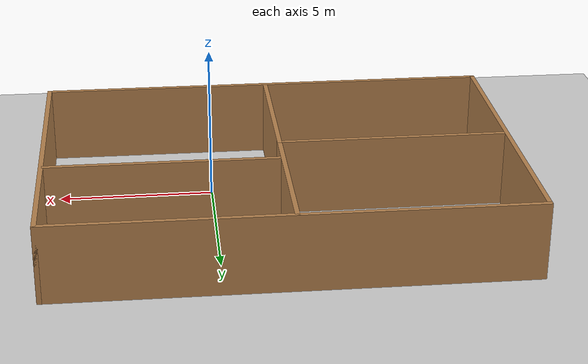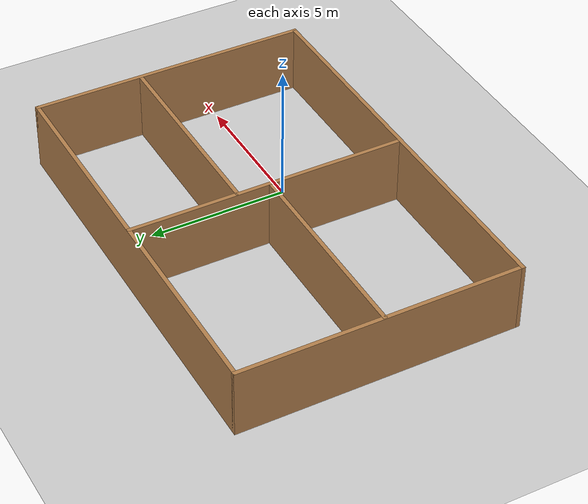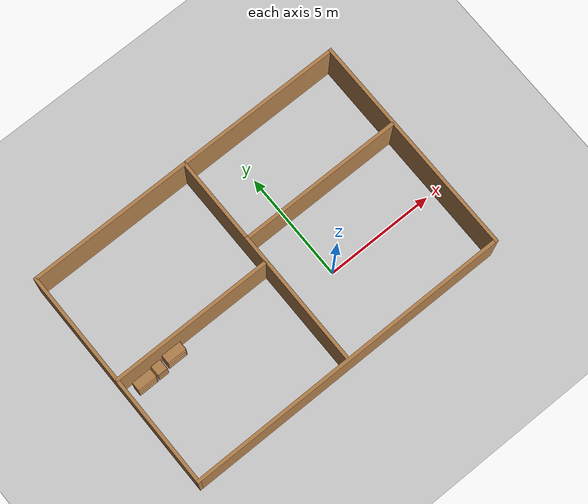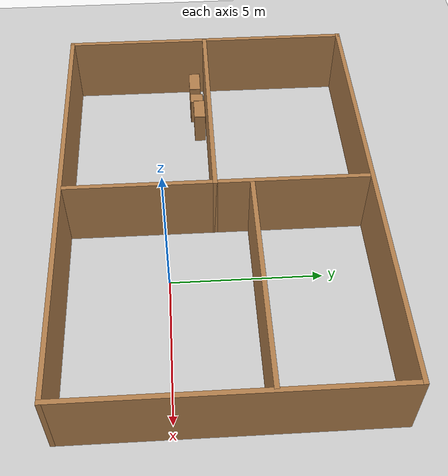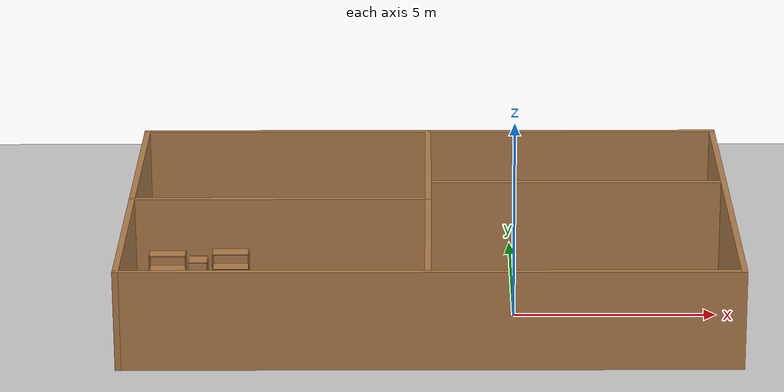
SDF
<sdf version="1.6">
 <world name="default">
  <light name="sun" type="directional">
   <pose>0 0 10 0 -0 0</pose>
   <diffuse>0.8 0.8 0.8 1</diffuse>
   <specular>0.2 0.2 0.2 1</specular>
   <attenuation>
    <range>1000</range>
    <constant>0.9</constant>
    <linear>0.01</linear>
    <quadratic>0.001</quadratic>
   </attenuation>
   <direction>-0.5 0.1 -0.9</direction>
  </light>
  <model name="ground_plane">
   <static>1</static>
   <link name="link">
    <collision name="collision">
     <geometry><plane><normal>0 0 1</normal><size>100 100</size></plane></geometry>
     <surface>
      <contact><collide_bitmask>65535</collide_bitmask></contact>
      <friction><ode><mu>100</mu><mu2>50</mu2></ode></friction>
     </surface>
    </collision>
    <visual name="visual">
     <cast_shadows>0</cast_shadows>
     <geometry><plane><normal>0 0 1</normal><size>100 100</size></plane></geometry>
     <material>
      <script><uri>file://media/materials/scripts/gazebo.material</uri><name>Gazebo/Grey</name></script>
     </material>
    </visual>
   </link>
  </model>
  <gravity>0 0 -9.8</gravity>
  <magnetic_field>6e-06 2.3e-05 -4.2e-05</magnetic_field>
  <atmosphere type="adiabatic"/>
  <physics name="default_physics" default="0" type="ode">
   <max_step_size>0.001</max_step_size>
   <real_time_factor>1</real_time_factor>
   <real_time_update_rate>1000</real_time_update_rate>
  </physics>
  <scene><ambient>0.4 0.4 0.4 1</ambient><background>0.7 0.7 0.7 1</background><shadows>1</shadows></scene>
  <audio><device>default</device></audio>
  <spherical_coordinates>
   <surface_model>EARTH_WGS84</surface_model>
   <latitude_deg>0</latitude_deg>
   <longitude_deg>0</longitude_deg>
   <elevation>0</elevation>
   <heading_deg>0</heading_deg>
  </spherical_coordinates>
  <model name="casita.world">
   <pose>-2.06819 1.66512 0 0 -0 0</pose>
   <link name="Wall_1">
    <collision name="Wall_1_Collision">
     <geometry><box><size>10.25 0.15 2.5</size></box></geometry>
     <pose>0 0 1.25 0 -0 0</pose>
    </collision>
    <visual name="Wall_1_Visual">
     <pose>0 0 1.25 0 -0 0</pose>
     <geometry><box><size>10.25 0.15 2.5</size></box></geometry>
     <material>
      <script><uri>file://media/materials/scripts/gazebo.material</uri><name>Gazebo/Wood</name></script>
      <ambient>1 1 1 1</ambient>
     </material>
     <meta><layer>0</layer></meta>
    </visual>
    <pose>-7.425 -0 0 0 -0 1.5708</pose>
   </link>
   <link name="Wall_11">
    <collision name="Wall_11_Collision">
     <geometry><box><size>5 0.15 2.5</size></box></geometry>
     <pose>0 0 1.25 0 -0 0</pose>
    </collision>
    <visual name="Wall_11_Visual">
     <pose>0 0 1.25 0 -0 0</pose>
     <geometry><box><size>5 0.15 2.5</size></box></geometry>
     <material>
      <script><uri>file://media/materials/scripts/gazebo.material</uri><name>Gazebo/Wood</name></script>
      <ambient>1 1 1 1</ambient>
     </material>
     <meta><layer>0</layer></meta>
    </visual>
    <pose>-0.04441 -2.48879 0 0 -0 -1.5708</pose>
   </link>
   <link name="Wall_18">
    <collision name="Wall_18_Collision">
     <geometry><box><size>7.5 0.15 2.5</size></box></geometry>
     <pose>0 0 1.25 0 -0 0</pose>
    </collision>
    <visual name="Wall_18_Visual">
     <pose>0 0 1.25 0 -0 0</pose>
     <geometry><box><size>7.5 0.15 2.5</size></box></geometry>
     <material>
      <script><uri>file://media/materials/scripts/gazebo.material</uri><name>Gazebo/Wood</name></script>
      <ambient>1 1 1 1</ambient>
     </material>
     <meta><layer>0</layer></meta>
    </visual>
    <pose>3.65248 1.13406 0 0 -0 0</pose>
   </link>
   <link name="Wall_2">
    <collision name="Wall_2_Collision">
     <geometry><box><size>15 0.15 2.5</size></box></geometry>
     <pose>0 0 1.25 0 -0 0</pose>
    </collision>
    <visual name="Wall_2_Visual">
     <pose>0 0 1.25 0 -0 0</pose>
     <geometry><box><size>15 0.15 2.5</size></box></geometry>
     <material>
      <script><uri>file://media/materials/scripts/gazebo.material</uri><name>Gazebo/Wood</name></script>
      <ambient>1 1 1 1</ambient>
     </material>
     <meta><layer>0</layer></meta>
    </visual>
    <pose>-0 5.05 0 0 -0 0</pose>
   </link>
   <link name="Wall_3">
    <collision name="Wall_3_Collision">
     <geometry><box><size>10.25 0.15 2.5</size></box></geometry>
     <pose>0 0 1.25 0 -0 0</pose>
    </collision>
    <visual name="Wall_3_Visual">
     <pose>0 0 1.25 0 -0 0</pose>
     <geometry><box><size>10.25 0.15 2.5</size></box></geometry>
     <material>
      <script><uri>file://media/materials/scripts/gazebo.material</uri><name>Gazebo/Wood</name></script>
      <ambient>1 1 1 1</ambient>
     </material>
     <meta><layer>0</layer></meta>
    </visual>
    <pose>7.425 -0 0 0 -0 -1.5708</pose>
   </link>
   <link name="Wall_4">
    <collision name="Wall_4_Collision">
     <geometry><box><size>15 0.15 2.5</size></box></geometry>
     <pose>0 0 1.25 0 -0 0</pose>
    </collision>
    <visual name="Wall_4_Visual">
     <pose>0 0 1.25 0 -0 0</pose>
     <geometry><box><size>15 0.15 2.5</size></box></geometry>
     <material>
      <script><uri>file://media/materials/scripts/gazebo.material</uri><name>Gazebo/Wood</name></script>
      <ambient>1 1 1 1</ambient>
     </material>
     <meta><layer>0</layer></meta>
    </visual>
    <pose>-0 -5.05 0 0 -0 3.14159</pose>
   </link>
   <link name="Wall_6">
    <collision name="Wall_6_Collision">
     <geometry><box><size>7.5 0.15 2.5</size></box></geometry>
     <pose>0 0 1.25 0 -0 0</pose>
    </collision>
    <visual name="Wall_6_Visual">
     <pose>0 0 1.25 0 -0 0</pose>
     <geometry><box><size>7.5 0.15 2.5</size></box></geometry>
     <material>
      <script><uri>file://media/materials/scripts/gazebo.material</uri><name>Gazebo/Wood</name></script>
      <ambient>1 1 1 1</ambient>
     </material>
     <meta><layer>0</layer></meta>
    </visual>
    <pose>-3.71941 -0.063793 0 0 -0 0</pose>
   </link>
   <link name="Wall_7">
    <collision name="Wall_7_Collision">
     <geometry><box><size>5.25 0.15 2.5</size></box></geometry>
     <pose>0 0 1.25 0 -0 0</pose>
    </collision>
    <visual name="Wall_7_Visual">
     <pose>0 0 1.25 0 -0 0</pose>
     <geometry><box><size>5.25 0.15 2.5</size></box></geometry>
     <material>
      <script><uri>file://media/materials/scripts/gazebo.material</uri><name>Gazebo/Wood</name></script>
      <ambient>1 1 1 1</ambient>
     </material>
     <meta><layer>0</layer></meta>
    </visual>
    <pose>-0.04441 2.48621 0 0 -0 1.5708</pose>
   </link>
   <static>1</static>
  </model>
  <model name="bookshelf">
   <static>1</static>
   <link name="link">
    <inertial><mass>1</mass></inertial>
    <collision name="back">
     <pose>0 0.005 0.6 0 -0 0</pose>
     <geometry><box><size>0.9 0.01 1.2</size></box></geometry>
    </collision>
    <visual name="visual1">
     <pose>0 0.005 0.6 0 -0 0</pose>
     <geometry><box><size>0.9 0.01 1.2</size></box></geometry>
     <material>
      <script><uri>file://media/materials/scripts/gazebo.material</uri><name>Gazebo/Wood</name></script>
     </material>
    </visual>
    <collision name="left_side">
     <pose>0.45 -0.195 0.6 0 -0 0</pose>
     <geometry><box><size>0.02 0.4 1.2</size></box></geometry>
    </collision>
    <visual name="visual2">
     <pose>0.45 -0.195 0.6 0 -0 0</pose>
     <geometry><box><size>0.02 0.4 1.2</size></box></geometry>
     <material>
      <script><uri>file://media/materials/scripts/gazebo.material</uri><name>Gazebo/Wood</name></script>
     </material>
    </visual>
    <collision name="right_side">
     <pose>-0.45 -0.195 0.6 0 -0 0</pose>
     <geometry><box><size>0.02 0.4 1.2</size></box></geometry>
    </collision>
    <visual name="visual3">
     <pose>-0.45 -0.195 0.6 0 -0 0</pose>
     <geometry><box><size>0.02 0.4 1.2</size></box></geometry>
     <material>
      <script><uri>file://media/materials/scripts/gazebo.material</uri><name>Gazebo/Wood</name></script>
     </material>
    </visual>
    <collision name="bottom">
     <pose>0 -0.195 0.03 0 -0 0</pose>
     <geometry><box><size>0.88 0.4 0.06</size></box></geometry>
    </collision>
    <visual name="visual4">
     <pose>0 -0.195 0.03 0 -0 0</pose>
     <geometry><box><size>0.88 0.4 0.06</size></box></geometry>
     <material>
      <script><uri>file://media/materials/scripts/gazebo.material</uri><name>Gazebo/Wood</name></script>
     </material>
    </visual>
    <collision name="top">
     <pose>0 -0.195 1.19 0 -0 0</pose>
     <geometry><box><size>0.88 0.4 0.02</size></box></geometry>
    </collision>
    <visual name="visual5">
     <pose>0 -0.195 1.19 0 -0 0</pose>
     <geometry><box><size>0.88 0.4 0.02</size></box></geometry>
     <material>
      <script><uri>file://media/materials/scripts/gazebo.material</uri><name>Gazebo/Wood</name></script>
     </material>
    </visual>
    <collision name="low_shelf">
     <pose>0 -0.195 0.43 0 -0 0</pose>
     <geometry><box><size>0.88 0.4 0.02</size></box></geometry>
    </collision>
    <visual name="visual6">
     <pose>0 -0.195 0.43 0 -0 0</pose>
     <geometry><box><size>0.88 0.4 0.02</size></box></geometry>
     <material>
      <script><uri>file://media/materials/scripts/gazebo.material</uri><name>Gazebo/Wood</name></script>
     </material>
    </visual>
    <collision name="high_shelf">
     <pose>0 -0.195 0.8 0 -0 0</pose>
     <geometry><box><size>0.88 0.4 0.02</size></box></geometry>
    </collision>
    <visual name="visual7">
     <pose>0 -0.195 0.8 0 -0 0</pose>
     <geometry><box><size>0.88 0.4 0.02</size></box></geometry>
     <material>
      <script><uri>file://media/materials/scripts/gazebo.material</uri><name>Gazebo/Wood</name></script>
     </material>
    </visual>
   </link>
   <pose>-8.61315 1.3631 0 0 -0 0</pose>
  </model>
  <model name="cabinet">
   <static>1</static>
   <link name="cabinet_bottom_plate">
    <inertial>
     <pose>0 0 -1 0 -0 0</pose>
     <inertia><ixx>2.05</ixx><ixy>0</ixy><ixz>0</ixz><iyy>2.05</iyy><iyz>0</iyz><izz>2.05</izz></inertia>
     <mass>25</mass>
    </inertial>
    <collision name="cabinet_bottom_plate_geom">
     <pose>0 0 0.01 0 -0 0</pose>
     <geometry><box><size>0.45 0.45 0.02</size></box></geometry>
    </collision>
    <visual name="cabinet_bottom_plate_geom_visual">
     <pose>0 0 0.01 0 -0 0</pose>
     <geometry><box><size>0.45 0.45 0.02</size></box></geometry>
     <material>
      <script><uri>file://media/materials/scripts/gazebo.material</uri><name>Gazebo/Wood</name></script>
     </material>
    </visual>
    <collision name="cabinet_bottom_plate_geom_cabinet_back_plate">
     <pose>0.235 0 0.51 0 -0 0</pose>
     <geometry><box><size>0.02 0.45 1.02</size></box></geometry>
    </collision>
    <visual name="cabinet_bottom_plate_geom_cabinet_back_plate_visual">
     <pose>0.235 0 0.51 0 -0 0</pose>
     <geometry><box><size>0.02 0.45 1.02</size></box></geometry>
     <material>
      <script><uri>file://media/materials/scripts/gazebo.material</uri><name>Gazebo/Wood</name></script>
     </material>
    </visual>
    <collision name="cabinet_bottom_plate_geom_cabinet_left_plate">
     <pose>0 0.235 0.51 0 -0 0</pose>
     <geometry><box><size>0.45 0.02 1.02</size></box></geometry>
    </collision>
    <visual name="cabinet_bottom_plate_geom_cabinet_left_plate_visual">
     <pose>0 0.235 0.51 0 -0 0</pose>
     <geometry><box><size>0.45 0.02 1.02</size></box></geometry>
     <material>
      <script><uri>file://media/materials/scripts/gazebo.material</uri><name>Gazebo/Wood</name></script>
     </material>
    </visual>
    <collision name="cabinet_bottom_plate_geom_cabinet_middle_plate">
     <pose>0 0 0.51 0 -0 0</pose>
     <geometry><box><size>0.45 0.45 0.02</size></box></geometry>
    </collision>
    <visual name="cabinet_bottom_plate_geom_cabinet_middle_plate_visual">
     <pose>0 0 0.51 0 -0 0</pose>
     <geometry><box><size>0.45 0.45 0.02</size></box></geometry>
     <material>
      <script><uri>file://media/materials/scripts/gazebo.material</uri><name>Gazebo/Wood</name></script>
     </material>
    </visual>
    <collision name="cabinet_bottom_plate_geom_cabinet_right_plate">
     <pose>0 -0.235 0.51 0 -0 0</pose>
     <geometry><box><size>0.45 0.02 1.02</size></box></geometry>
    </collision>
    <visual name="cabinet_bottom_plate_geom_cabinet_right_plate_visual">
     <pose>0 -0.235 0.51 0 -0 0</pose>
     <geometry><box><size>0.45 0.02 1.02</size></box></geometry>
     <material>
      <script><uri>file://media/materials/scripts/gazebo.material</uri><name>Gazebo/Wood</name></script>
     </material>
    </visual>
    <collision name="cabinet_bottom_plate_geom_cabinet_top_plate">
     <pose>0 0 1.01 0 -0 0</pose>
     <geometry><box><size>0.45 0.45 0.02</size></box></geometry>
    </collision>
    <visual name="cabinet_bottom_plate_geom_cabinet_top_plate_visual">
     <pose>0 0 1.01 0 -0 0</pose>
     <geometry><box><size>0.45 0.45 0.02</size></box></geometry>
     <material>
      <script><uri>file://media/materials/scripts/gazebo.material</uri><name>Gazebo/Wood</name></script>
     </material>
    </visual>
   </link>
   <pose>-7.8603 1.21496 0 0 -0 0</pose>
  </model>
  <model name="bookshelf_0">
   <static>1</static>
   <link name="link">
    <inertial><mass>1</mass></inertial>
    <collision name="back">
     <pose>0 0.005 0.6 0 -0 0</pose>
     <geometry><box><size>0.9 0.01 1.2</size></box></geometry>
    </collision>
    <visual name="visual1">
     <pose>0 0.005 0.6 0 -0 0</pose>
     <geometry><box><size>0.9 0.01 1.2</size></box></geometry>
     <material>
      <script><uri>file://media/materials/scripts/gazebo.material</uri><name>Gazebo/Wood</name></script>
     </material>
    </visual>
    <collision name="left_side">
     <pose>0.45 -0.195 0.6 0 -0 0</pose>
     <geometry><box><size>0.02 0.4 1.2</size></box></geometry>
    </collision>
    <visual name="visual2">
     <pose>0.45 -0.195 0.6 0 -0 0</pose>
     <geometry><box><size>0.02 0.4 1.2</size></box></geometry>
     <material>
      <script><uri>file://media/materials/scripts/gazebo.material</uri><name>Gazebo/Wood</name></script>
     </material>
    </visual>
    <collision name="right_side">
     <pose>-0.45 -0.195 0.6 0 -0 0</pose>
     <geometry><box><size>0.02 0.4 1.2</size></box></geometry>
    </collision>
    <visual name="visual3">
     <pose>-0.45 -0.195 0.6 0 -0 0</pose>
     <geometry><box><size>0.02 0.4 1.2</size></box></geometry>
     <material>
      <script><uri>file://media/materials/scripts/gazebo.material</uri><name>Gazebo/Wood</name></script>
     </material>
    </visual>
    <collision name="bottom">
     <pose>0 -0.195 0.03 0 -0 0</pose>
     <geometry><box><size>0.88 0.4 0.06</size></box></geometry>
    </collision>
    <visual name="visual4">
     <pose>0 -0.195 0.03 0 -0 0</pose>
     <geometry><box><size>0.88 0.4 0.06</size></box></geometry>
     <material>
      <script><uri>file://media/materials/scripts/gazebo.material</uri><name>Gazebo/Wood</name></script>
     </material>
    </visual>
    <collision name="top">
     <pose>0 -0.195 1.19 0 -0 0</pose>
     <geometry><box><size>0.88 0.4 0.02</size></box></geometry>
    </collision>
    <visual name="visual5">
     <pose>0 -0.195 1.19 0 -0 0</pose>
     <geometry><box><size>0.88 0.4 0.02</size></box></geometry>
     <material>
      <script><uri>file://media/materials/scripts/gazebo.material</uri><name>Gazebo/Wood</name></script>
     </material>
    </visual>
    <collision name="low_shelf">
     <pose>0 -0.195 0.43 0 -0 0</pose>
     <geometry><box><size>0.88 0.4 0.02</size></box></geometry>
    </collision>
    <visual name="visual6">
     <pose>0 -0.195 0.43 0 -0 0</pose>
     <geometry><box><size>0.88 0.4 0.02</size></box></geometry>
     <material>
      <script><uri>file://media/materials/scripts/gazebo.material</uri><name>Gazebo/Wood</name></script>
     </material>
    </visual>
    <collision name="high_shelf">
     <pose>0 -0.195 0.8 0 -0 0</pose>
     <geometry><box><size>0.88 0.4 0.02</size></box></geometry>
    </collision>
    <visual name="visual7">
     <pose>0 -0.195 0.8 0 -0 0</pose>
     <geometry><box><size>0.88 0.4 0.02</size></box></geometry>
     <material>
      <script><uri>file://media/materials/scripts/gazebo.material</uri><name>Gazebo/Wood</name></script>
     </material>
    </visual>
   </link>
   <pose>-7.04753 1.48225 0 0 -0 0</pose>
  </model>
 </world>
</sdf>
